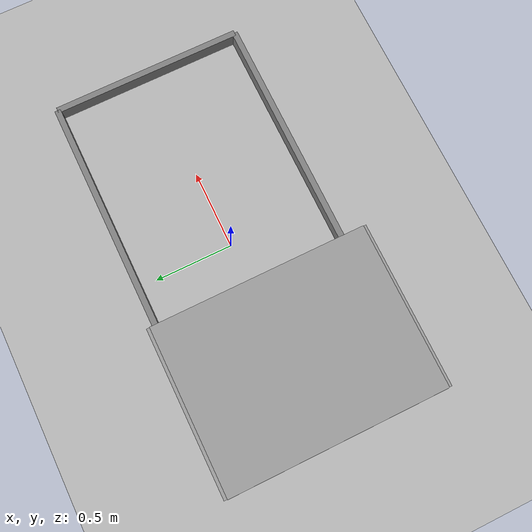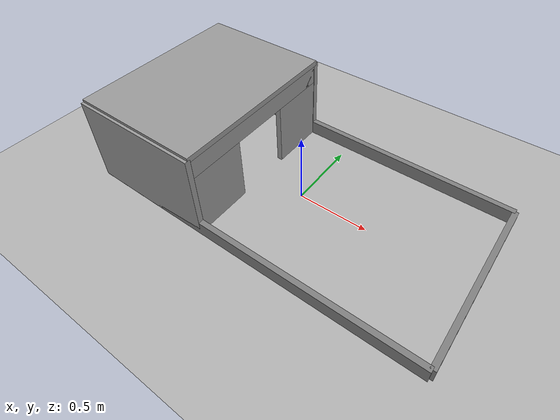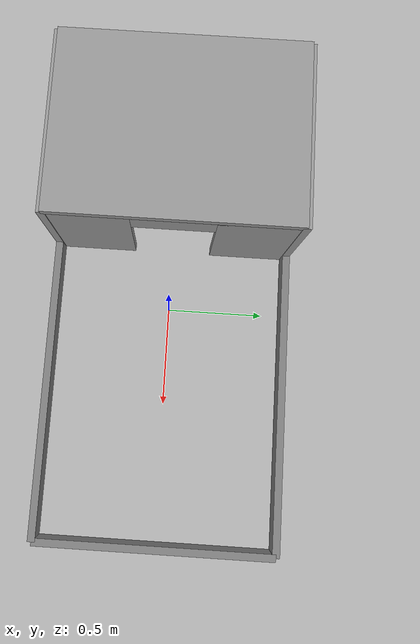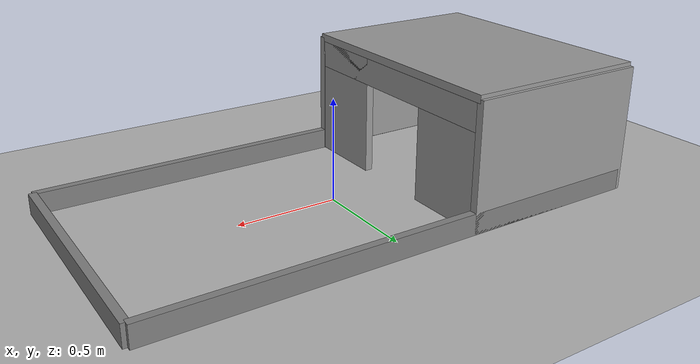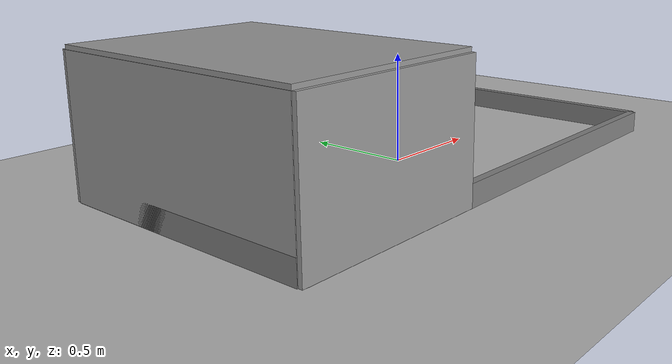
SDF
<?xml version="1.0" ?>
<sdf version="1.7">
  <world name="default">
    <!-- Add a sun for better lighting -->
    <include>
      <uri>model://sun</uri>
    </include>

    <!-- Ground plane representing the field surface -->
    <model name="ground_plane">
      <static>true</static>
      <link name="link">
        <collision name="collision">
          <geometry>
            <plane>
              <normal>0 0 1</normal>
              <size>2.4384 1.2192</size> <!-- 96in x 48in -->
            </plane>
          </geometry>
          <surface>
            <friction>
              <ode>
                <mu>1</mu>
                <mu2>1</mu2>
              </ode>
            </friction>
          </surface>
        </collision>
        <visual name="visual">
          <geometry>
            <plane>
              <normal>0 0 1</normal>
              <size>2.4384 1.2192</size> <!-- 96in x 48in -->
            </plane>
          </geometry>
          <material>
            <ambient>0.7 0.7 0.7 1</ambient>
            <diffuse>0.7 0.7 0.7 1</diffuse>
            <specular>0.01 0.01 0.01 1</specular>
          </material>
        </visual>
      </link>
    </model>

    <!-- Field enclosure (walls) -->
    <model name="field_enclosure">
      <static>true</static>
      <pose>0 0 0.05 0 0 0</pose> <!-- Slight elevation to avoid z-fighting -->
      <link name="walls">
        <!-- North Wall (along y-axis, positive side) -->
        <collision name="north_wall_collision">
          <pose>0 0.6096 0 0 0 0</pose> <!-- 48in/2 = 24in = 0.6096m -->
          <geometry>
            <box>
              <size>2.4384 0.0381 0.1016</size> <!-- 96in x 1.5in x 4in -->
            </box>
          </geometry>
        </collision>
        <visual name="north_wall_visual">
          <pose>0 0.6096 0 0 0 0</pose>
          <geometry>
            <box>
              <size>2.4384 0.0381 0.1016</size>
            </box>
          </geometry>
          <material>
            <ambient>0.5 0.5 0.5 1</ambient>
            <diffuse>0.5 0.5 0.5 1</diffuse>
          </material>
        </visual>

        <!-- South Wall (along y-axis, negative side) -->
        <collision name="south_wall_collision">
          <pose>0 -0.6096 0 0 0 0</pose>
          <geometry>
            <box>
              <size>2.4384 0.0381 0.1016</size> <!-- 96in x 1.5in x 4in -->
            </box>
          </geometry>
        </collision>
        <visual name="south_wall_visual">
          <pose>0 -0.6096 0 0 0 0</pose>
          <geometry>
            <box>
              <size>2.4384 0.0381 0.1016</size>
            </box>
          </geometry>
          <material>
            <ambient>0.5 0.5 0.5 1</ambient>
            <diffuse>0.5 0.5 0.5 1</diffuse>
          </material>
        </visual>

        <!-- East Wall (along x-axis, positive side) -->
        <collision name="east_wall_collision">
          <pose>1.2192 0 0 0 0 0</pose> <!-- 96in/2 = 48in = 1.2192m -->
          <geometry>
            <box>
              <size>0.0381 1.2192 0.1016</size> <!-- 1.5in x 48in x 4in -->
            </box>
          </geometry>
        </collision>
        <visual name="east_wall_visual">
          <pose>1.2192 0 0 0 0 0</pose>
          <geometry>
            <box>
              <size>0.0381 1.2192 0.1016</size>
            </box>
          </geometry>
          <material>
            <ambient>0.5 0.5 0.5 1</ambient>
            <diffuse>0.5 0.5 0.5 1</diffuse>
          </material>
        </visual>

        <!-- West Wall (along x-axis, negative side) -->
        <collision name="west_wall_collision">
          <pose>-1.2192 0 0 0 0 0</pose>
          <geometry>
            <box>
              <size>0.0381 1.2192 0.1016</size> <!-- 1.5in x 48in x 4in -->
            </box>
          </geometry>
        </collision>
        <visual name="west_wall_visual">
          <pose>-1.2192 0 0 0 0 0</pose>
          <geometry>
            <box>
              <size>0.0381 1.2192 0.1016</size>
            </box>
          </geometry>
          <material>
            <ambient>0.5 0.5 0.5 1</ambient>
            <diffuse>0.5 0.5 0.5 1</diffuse>
          </material>
        </visual>
      </link>
    </model>

    <!-- Box at the end of the field - constructed with individual wall segments to make it truly hollow -->
    <!-- Base position is at x = -0.7779, y = 0, z = 0.3048 -->

    <!-- Box - west wall (back wall) -->
    <model name="box_wall_west">
      <static>true</static>
      <pose>-1.2192 0 0.3048 0 0 0</pose> <!-- Back wall aligned with field wall -->
      <link name="link">
        <collision name="collision">
          <geometry>
            <box>
              <size>0.0381 1.2192 0.6096</size> <!-- 1.5in x 48in x 24in -->
            </box>
          </geometry>
        </collision>
        <visual name="visual">
          <geometry>
            <box>
              <size>0.0381 1.2192 0.6096</size>
            </box>
          </geometry>
          <material>
            <ambient>0.6 0.6 0.6 1</ambient>
            <diffuse>0.6 0.6 0.6 1</diffuse>
          </material>
        </visual>
      </link>
    </model>

    <!-- Box - north wall -->
    <model name="box_wall_north">
      <static>true</static>
      <pose>-0.7779 0.6096 0.3048 0 0 0</pose> <!-- Aligned with field north wall -->
      <link name="link">
        <collision name="collision">
          <geometry>
            <box>
              <size>0.9144 0.0381 0.6096</size> <!-- 36in x 1.5in x 24in -->
            </box>
          </geometry>
        </collision>
        <visual name="visual">
          <geometry>
            <box>
              <size>0.9144 0.0381 0.6096</size>
            </box>
          </geometry>
          <material>
            <ambient>0.6 0.6 0.6 1</ambient>
            <diffuse>0.6 0.6 0.6 1</diffuse>
          </material>
        </visual>
      </link>
    </model>

    <!-- Box - south wall -->
    <model name="box_wall_south">
      <static>true</static>
      <pose>-0.7779 -0.6096 0.3048 0 0 0</pose> <!-- Aligned with field south wall -->
      <link name="link">
        <collision name="collision">
          <geometry>
            <box>
              <size>0.9144 0.0381 0.6096</size> <!-- 36in x 1.5in x 24in -->
            </box>
          </geometry>
        </collision>
        <visual name="visual">
          <geometry>
            <box>
              <size>0.9144 0.0381 0.6096</size>
            </box>
          </geometry>
          <material>
            <ambient>0.6 0.6 0.6 1</ambient>
            <diffuse>0.6 0.6 0.6 1</diffuse>
          </material>
        </visual>
      </link>
    </model>

    <!-- Box - east wall top portion (above door) -->
    <model name="box_wall_east_top">
      <static>true</static>
      <pose>-0.3429 0 0.5334 0 0 0</pose> <!-- 0.4064m (door height) + 0.1016m (gap) from bottom + 0.3048m (base) -->
      <link name="link">
        <collision name="collision">
          <geometry>
            <box>
              <size>0.0381 1.2192 0.1524</size> <!-- 1.5in x 48in x 6in remaining height -->
            </box>
          </geometry>
        </collision>
        <visual name="visual">
          <geometry>
            <box>
              <size>0.0381 1.2192 0.1524</size>
            </box>
          </geometry>
          <material>
            <ambient>0.6 0.6 0.6 1</ambient>
            <diffuse>0.6 0.6 0.6 1</diffuse>
          </material>
        </visual>
      </link>
    </model>

    <!-- Box - east wall left portion (left of door) -->
    <model name="box_wall_east_left">
      <static>true</static>
      <pose>-0.3429 0.4064 0.3048 0 0 0</pose> <!-- 16in (0.4064m) + door width offset -->
      <link name="link">
        <collision name="collision">
          <geometry>
            <box>
              <size>0.0381 0.4064 0.6096</size> <!-- 1.5in x remaining width x door height -->
            </box>
          </geometry>
        </collision>
        <visual name="visual">
          <geometry>
            <box>
              <size>0.0381 0.4064 0.6096</size>
            </box>
          </geometry>
          <material>
            <ambient>0.6 0.6 0.6 1</ambient>
            <diffuse>0.6 0.6 0.6 1</diffuse>
          </material>
        </visual>
      </link>
    </model>

    <!-- Box - east wall right portion (right of door) -->
    <model name="box_wall_east_right">
      <static>true</static>
      <pose>-0.3429 -0.4064 0.3048 0 0 0</pose> <!-- 16in (0.4064m) + door width offset -->
      <link name="link">
        <collision name="collision">
          <geometry>
            <box>
              <size>0.0381 0.4064 0.6096</size> <!-- 1.5in x remaining width x door height -->
            </box>
          </geometry>
        </collision>
        <visual name="visual">
          <geometry>
            <box>
              <size>0.0381 0.4064 0.6096</size>
            </box>
          </geometry>
          <material>
            <ambient>0.6 0.6 0.6 1</ambient>
            <diffuse>0.6 0.6 0.6 1</diffuse>
          </material>
        </visual>
      </link>
    </model>

    <!-- Box - top/ceiling wall -->
    <model name="box_wall_top">
      <static>true</static>
      <pose>-0.7779 0 0.6096 0 0 0</pose> <!-- At the top of the box -->
      <link name="link">
        <collision name="collision">
          <geometry>
            <box>
              <size>0.9144 1.2192 0.0381</size> <!-- 36in x 48in x 1.5in -->
            </box>
          </geometry>
        </collision>
        <visual name="visual">
          <geometry>
            <box>
              <size>0.9144 1.2192 0.0381</size>
            </box>
          </geometry>
          <material>
            <ambient>0.6 0.6 0.6 1</ambient>
            <diffuse>0.6 0.6 0.6 1</diffuse>
          </material>
        </visual>
      </link>
    </model>
  </world>
</sdf>
